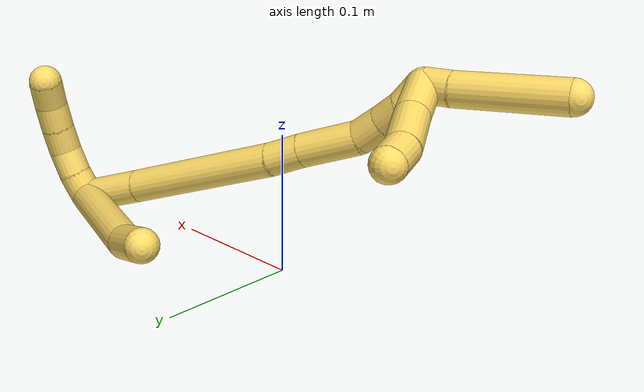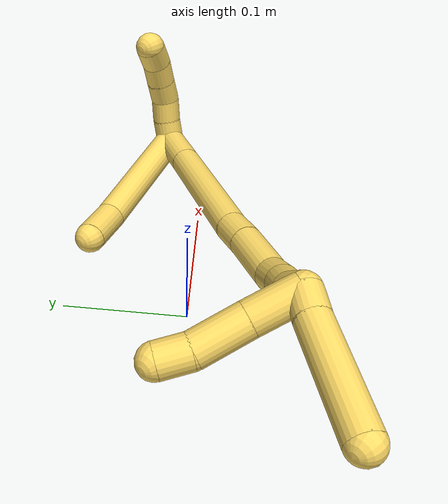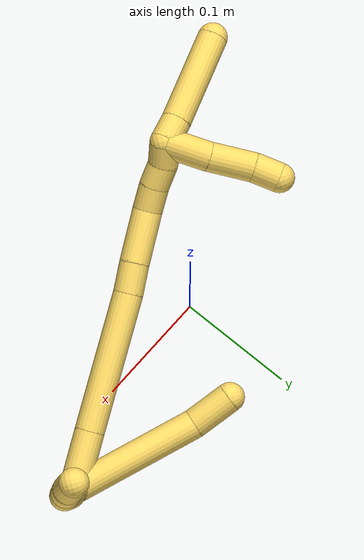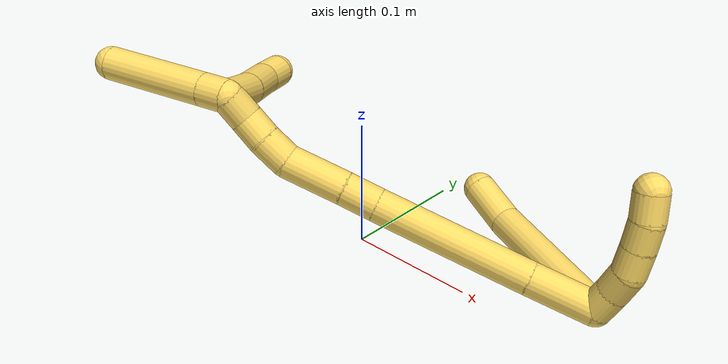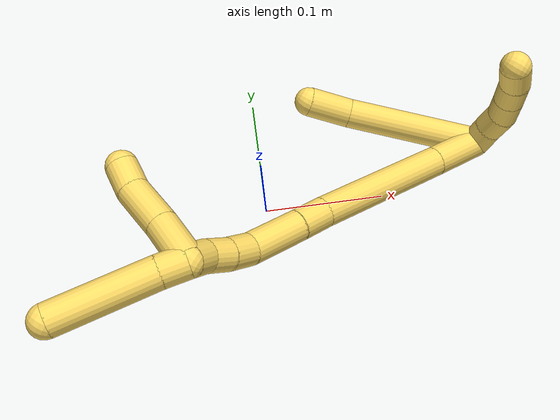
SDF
<sdf version="1.7">
 <world name="default">
  <model name="5">
   <static>0</static>
   <link name="5">
    <collision name="collision-cylinder-e_1_2_8">
     <pose>-0.011954 0.011499 0.054066 -0.209566 -0.21299 0.022484</pose>
     <geometry><cylinder><radius>0.0125</radius><length>0.113106</length></cylinder></geometry>
     <surface>
      <friction><ode><mu>1.16</mu><mu2>1.16</mu2><slip1>0</slip1><slip2>0</slip2></ode></friction>
      <contact><ode><kp>1e+06</kp><kd>1</kd><max_vel>0</max_vel><min_depth>0.001</min_depth></ode></contact>
     </surface>
    </collision>
    <visual name="visual-cylinder-e_1_2_8">
     <pose>-0.011954 0.011499 0.054066 -0.209566 -0.21299 0.022484</pose>
     <geometry><cylinder><radius>0.0125</radius><length>0.113106</length></cylinder></geometry>
     <material><ambient>1 0.858824 0.4 1</ambient></material>
    </visual>
    <collision name="collision-cylinder-e_2_8_6">
     <pose>-0.030302 0.022545 0.12543 0.026205 -0.353892 -0.004686</pose>
     <geometry><cylinder><radius>0.0125</radius><length>0.036894</length></cylinder></geometry>
     <surface>
      <friction><ode><mu>1.16</mu><mu2>1.16</mu2><slip1>0</slip1><slip2>0</slip2></ode></friction>
      <contact><ode><kp>1e+06</kp><kd>1</kd><max_vel>0</max_vel><min_depth>0.001</min_depth></ode></contact>
     </surface>
    </collision>
    <visual name="visual-cylinder-e_2_8_6">
     <pose>-0.030302 0.022545 0.12543 0.026205 -0.353892 -0.004686</pose>
     <geometry><cylinder><radius>0.0125</radius><length>0.036894</length></cylinder></geometry>
     <material><ambient>1 0.858824 0.4 1</ambient></material>
    </visual>
    <collision name="collision-cylinder-e_1_2_9">
     <pose>0.001057 -0.009912 -0.000794 1.65068 0.105871 0.114667</pose>
     <geometry><cylinder><radius>0.0125</radius><length>0.02</length></cylinder></geometry>
     <surface>
      <friction><ode><mu>1.16</mu><mu2>1.16</mu2><slip1>0</slip1><slip2>0</slip2></ode></friction>
      <contact><ode><kp>1e+06</kp><kd>1</kd><max_vel>0</max_vel><min_depth>0.001</min_depth></ode></contact>
     </surface>
    </collision>
    <visual name="visual-cylinder-e_1_2_9">
     <pose>0.001057 -0.009912 -0.000794 1.65068 0.105871 0.114667</pose>
     <geometry><cylinder><radius>0.0125</radius><length>0.02</length></cylinder></geometry>
     <material><ambient>1 0.858824 0.4 1</ambient></material>
    </visual>
    <collision name="collision-cylinder-e_2_9_10">
     <pose>0.002053 -0.029772 -0.002607 1.67299 -0.006009 -0.006656</pose>
     <geometry><cylinder><radius>0.0125</radius><length>0.02</length></cylinder></geometry>
     <surface>
      <friction><ode><mu>1.16</mu><mu2>1.16</mu2><slip1>0</slip1><slip2>0</slip2></ode></friction>
      <contact><ode><kp>1e+06</kp><kd>1</kd><max_vel>0</max_vel><min_depth>0.001</min_depth></ode></contact>
     </surface>
    </collision>
    <visual name="visual-cylinder-e_2_9_10">
     <pose>0.002053 -0.029772 -0.002607 1.67299 -0.006009 -0.006656</pose>
     <geometry><cylinder><radius>0.0125</radius><length>0.02</length></cylinder></geometry>
     <material><ambient>1 0.858824 0.4 1</ambient></material>
    </visual>
    <collision name="collision-cylinder-e_3_10_11">
     <pose>0.000912 -0.049439 -0.001537 1.359 -0.108332 -0.087544</pose>
     <geometry><cylinder><radius>0.0125</radius><length>0.02</length></cylinder></geometry>
     <surface>
      <friction><ode><mu>1.16</mu><mu2>1.16</mu2><slip1>0</slip1><slip2>0</slip2></ode></friction>
      <contact><ode><kp>1e+06</kp><kd>1</kd><max_vel>0</max_vel><min_depth>0.001</min_depth></ode></contact>
     </surface>
    </collision>
    <visual name="visual-cylinder-e_3_10_11">
     <pose>0.000912 -0.049439 -0.001537 1.359 -0.108332 -0.087544</pose>
     <geometry><cylinder><radius>0.0125</radius><length>0.02</length></cylinder></geometry>
     <material><ambient>1 0.858824 0.4 1</ambient></material>
    </visual>
    <collision name="collision-cylinder-e_4_11_12">
     <pose>-0.001636 -0.068779 0.002853 1.3361 -0.147176 -0.116213</pose>
     <geometry><cylinder><radius>0.0125</radius><length>0.02</length></cylinder></geometry>
     <surface>
      <friction><ode><mu>1.16</mu><mu2>1.16</mu2><slip1>0</slip1><slip2>0</slip2></ode></friction>
      <contact><ode><kp>1e+06</kp><kd>1</kd><max_vel>0</max_vel><min_depth>0.001</min_depth></ode></contact>
     </surface>
    </collision>
    <visual name="visual-cylinder-e_4_11_12">
     <pose>-0.001636 -0.068779 0.002853 1.3361 -0.147176 -0.116213</pose>
     <geometry><cylinder><radius>0.0125</radius><length>0.02</length></cylinder></geometry>
     <material><ambient>1 0.858824 0.4 1</ambient></material>
    </visual>
    <collision name="collision-cylinder-e_5_12_5">
     <pose>-0.005094 -0.08725 0.00936 1.12709 -0.20054 -0.126977</pose>
     <geometry><cylinder><radius>0.0125</radius><length>0.02</length></cylinder></geometry>
     <surface>
      <friction><ode><mu>1.16</mu><mu2>1.16</mu2><slip1>0</slip1><slip2>0</slip2></ode></friction>
      <contact><ode><kp>1e+06</kp><kd>1</kd><max_vel>0</max_vel><min_depth>0.001</min_depth></ode></contact>
     </surface>
    </collision>
    <visual name="visual-cylinder-e_5_12_5">
     <pose>-0.005094 -0.08725 0.00936 1.12709 -0.20054 -0.126977</pose>
     <geometry><cylinder><radius>0.0125</radius><length>0.02</length></cylinder></geometry>
     <material><ambient>1 0.858824 0.4 1</ambient></material>
    </visual>
    <collision name="collision-cylinder-e_1_2_13">
     <pose>-0.020988 0.001917 0.01269 -0.149898 -1.02199 0.08415</pose>
     <geometry><cylinder><radius>0.0125</radius><length>0.049202</length></cylinder></geometry>
     <surface>
      <friction><ode><mu>1.16</mu><mu2>1.16</mu2><slip1>0</slip1><slip2>0</slip2></ode></friction>
      <contact><ode><kp>1e+06</kp><kd>1</kd><max_vel>0</max_vel><min_depth>0.001</min_depth></ode></contact>
     </surface>
    </collision>
    <visual name="visual-cylinder-e_1_2_13">
     <pose>-0.020988 0.001917 0.01269 -0.149898 -1.02199 0.08415</pose>
     <geometry><cylinder><radius>0.0125</radius><length>0.049202</length></cylinder></geometry>
     <material><ambient>1 0.858824 0.4 1</ambient></material>
    </visual>
    <collision name="collision-cylinder-e_2_13_14">
     <pose>-0.091862 0.007876 0.056128 -0.130736 -1.01458 0.072735</pose>
     <geometry><cylinder><radius>0.0125</radius><length>0.11748</length></cylinder></geometry>
     <surface>
      <friction><ode><mu>1.16</mu><mu2>1.16</mu2><slip1>0</slip1><slip2>0</slip2></ode></friction>
      <contact><ode><kp>1e+06</kp><kd>1</kd><max_vel>0</max_vel><min_depth>0.001</min_depth></ode></contact>
     </surface>
    </collision>
    <visual name="visual-cylinder-e_2_13_14">
     <pose>-0.091862 0.007876 0.056128 -0.130736 -1.01458 0.072735</pose>
     <geometry><cylinder><radius>0.0125</radius><length>0.11748</length></cylinder></geometry>
     <material><ambient>1 0.858824 0.4 1</ambient></material>
    </visual>
    <collision name="collision-cylinder-e_3_14_15">
     <pose>-0.153101 0.011963 0.092909 -0.007256 -1.08244 0.004361</pose>
     <geometry><cylinder><radius>0.0125</radius><length>0.025714</length></cylinder></geometry>
     <surface>
      <friction><ode><mu>1.16</mu><mu2>1.16</mu2><slip1>0</slip1><slip2>0</slip2></ode></friction>
      <contact><ode><kp>1e+06</kp><kd>1</kd><max_vel>0</max_vel><min_depth>0.001</min_depth></ode></contact>
     </surface>
    </collision>
    <visual name="visual-cylinder-e_3_14_15">
     <pose>-0.153101 0.011963 0.092909 -0.007256 -1.08244 0.004361</pose>
     <geometry><cylinder><radius>0.0125</radius><length>0.025714</length></cylinder></geometry>
     <material><ambient>1 0.858824 0.4 1</ambient></material>
    </visual>
    <collision name="collision-cylinder-e_4_15_16">
     <pose>-0.184005 0.013195 0.110199 -0.105196 -1.0459 0.060681</pose>
     <geometry><cylinder><radius>0.0125</radius><length>0.045181</length></cylinder></geometry>
     <surface>
      <friction><ode><mu>1.16</mu><mu2>1.16</mu2><slip1>0</slip1><slip2>0</slip2></ode></friction>
      <contact><ode><kp>1e+06</kp><kd>1</kd><max_vel>0</max_vel><min_depth>0.001</min_depth></ode></contact>
     </surface>
    </collision>
    <visual name="visual-cylinder-e_4_15_16">
     <pose>-0.184005 0.013195 0.110199 -0.105196 -1.0459 0.060681</pose>
     <geometry><cylinder><radius>0.0125</radius><length>0.045181</length></cylinder></geometry>
     <material><ambient>1 0.858824 0.4 1</ambient></material>
    </visual>
    <collision name="collision-cylinder-e_5_16_17">
     <pose>-0.212326 0.011247 0.127262 0.495393 -0.925888 -0.251117</pose>
     <geometry><cylinder><radius>0.0125</radius><length>0.021953</length></cylinder></geometry>
     <surface>
      <friction><ode><mu>1.16</mu><mu2>1.16</mu2><slip1>0</slip1><slip2>0</slip2></ode></friction>
      <contact><ode><kp>1e+06</kp><kd>1</kd><max_vel>0</max_vel><min_depth>0.001</min_depth></ode></contact>
     </surface>
    </collision>
    <visual name="visual-cylinder-e_5_16_17">
     <pose>-0.212326 0.011247 0.127262 0.495393 -0.925888 -0.251117</pose>
     <geometry><cylinder><radius>0.0125</radius><length>0.021953</length></cylinder></geometry>
     <material><ambient>1 0.858824 0.4 1</ambient></material>
    </visual>
    <collision name="collision-cylinder-e_6_17_18">
     <pose>-0.228377 0.00486 0.139286 0.481701 -0.8037 -0.20801</pose>
     <geometry><cylinder><radius>0.0125</radius><length>0.020221</length></cylinder></geometry>
     <surface>
      <friction><ode><mu>1.16</mu><mu2>1.16</mu2><slip1>0</slip1><slip2>0</slip2></ode></friction>
      <contact><ode><kp>1e+06</kp><kd>1</kd><max_vel>0</max_vel><min_depth>0.001</min_depth></ode></contact>
     </surface>
    </collision>
    <visual name="visual-cylinder-e_6_17_18">
     <pose>-0.228377 0.00486 0.139286 0.481701 -0.8037 -0.20801</pose>
     <geometry><cylinder><radius>0.0125</radius><length>0.020221</length></cylinder></geometry>
     <material><ambient>1 0.858824 0.4 1</ambient></material>
    </visual>
    <collision name="collision-cylinder-e_7_18_1">
     <pose>-0.243681 -0.00347 0.149011 0.966658 -0.915271 -0.50591</pose>
     <geometry><cylinder><radius>0.0125</radius><length>0.020249</length></cylinder></geometry>
     <surface>
      <friction><ode><mu>1.16</mu><mu2>1.16</mu2><slip1>0</slip1><slip2>0</slip2></ode></friction>
      <contact><ode><kp>1e+06</kp><kd>1</kd><max_vel>0</max_vel><min_depth>0.001</min_depth></ode></contact>
     </surface>
    </collision>
    <visual name="visual-cylinder-e_7_18_1">
     <pose>-0.243681 -0.00347 0.149011 0.966658 -0.915271 -0.50591</pose>
     <geometry><cylinder><radius>0.0125</radius><length>0.020249</length></cylinder></geometry>
     <material><ambient>1 0.858824 0.4 1</ambient></material>
    </visual>
    <collision name="collision-cylinder-e_1_1_19">
     <pose>-0.24129 -0.00329 0.167547 -0.33662 0.579307 -0.101196</pose>
     <geometry><cylinder><radius>0.0125</radius><length>0.038059</length></cylinder></geometry>
     <surface>
      <friction><ode><mu>1.16</mu><mu2>1.16</mu2><slip1>0</slip1><slip2>0</slip2></ode></friction>
      <contact><ode><kp>1e+06</kp><kd>1</kd><max_vel>0</max_vel><min_depth>0.001</min_depth></ode></contact>
     </surface>
    </collision>
    <visual name="visual-cylinder-e_1_1_19">
     <pose>-0.24129 -0.00329 0.167547 -0.33662 0.579307 -0.101196</pose>
     <geometry><cylinder><radius>0.0125</radius><length>0.038059</length></cylinder></geometry>
     <material><ambient>1 0.858824 0.4 1</ambient></material>
    </visual>
    <collision name="collision-cylinder-e_2_19_20">
     <pose>-0.221523 0.006691 0.199016 -0.27965 0.500262 -0.071884</pose>
     <geometry><cylinder><radius>0.0125</radius><length>0.038981</length></cylinder></geometry>
     <surface>
      <friction><ode><mu>1.16</mu><mu2>1.16</mu2><slip1>0</slip1><slip2>0</slip2></ode></friction>
      <contact><ode><kp>1e+06</kp><kd>1</kd><max_vel>0</max_vel><min_depth>0.001</min_depth></ode></contact>
     </surface>
    </collision>
    <visual name="visual-cylinder-e_2_19_20">
     <pose>-0.221523 0.006691 0.199016 -0.27965 0.500262 -0.071884</pose>
     <geometry><cylinder><radius>0.0125</radius><length>0.038981</length></cylinder></geometry>
     <material><ambient>1 0.858824 0.4 1</ambient></material>
    </visual>
    <collision name="collision-cylinder-e_3_20_4">
     <pose>-0.205072 0.012057 0.224449 -0.071624 0.667151 -0.024829</pose>
     <geometry><cylinder><radius>0.0125</radius><length>0.02296</length></cylinder></geometry>
     <surface>
      <friction><ode><mu>1.16</mu><mu2>1.16</mu2><slip1>0</slip1><slip2>0</slip2></ode></friction>
      <contact><ode><kp>1e+06</kp><kd>1</kd><max_vel>0</max_vel><min_depth>0.001</min_depth></ode></contact>
     </surface>
    </collision>
    <visual name="visual-cylinder-e_3_20_4">
     <pose>-0.205072 0.012057 0.224449 -0.071624 0.667151 -0.024829</pose>
     <geometry><cylinder><radius>0.0125</radius><length>0.02296</length></cylinder></geometry>
     <material><ambient>1 0.858824 0.4 1</ambient></material>
    </visual>
    <collision name="collision-cylinder-e_1_1_21">
     <pose>-0.258831 -0.004978 0.159105 -0.496761 -0.760034 0.201917</pose>
     <geometry><cylinder><radius>0.0125</radius><length>0.020679</length></cylinder></geometry>
     <surface>
      <friction><ode><mu>1.16</mu><mu2>1.16</mu2><slip1>0</slip1><slip2>0</slip2></ode></friction>
      <contact><ode><kp>1e+06</kp><kd>1</kd><max_vel>0</max_vel><min_depth>0.001</min_depth></ode></contact>
     </surface>
    </collision>
    <visual name="visual-cylinder-e_1_1_21">
     <pose>-0.258831 -0.004978 0.159105 -0.496761 -0.760034 0.201917</pose>
     <geometry><cylinder><radius>0.0125</radius><length>0.020679</length></cylinder></geometry>
     <material><ambient>1 0.858824 0.4 1</ambient></material>
    </visual>
    <collision name="collision-cylinder-e_2_21_3">
     <pose>-0.295576 0.010953 0.188989 -0.48777 -0.843385 0.222339</pose>
     <geometry><cylinder><radius>0.0125</radius><length>0.079321</length></cylinder></geometry>
     <surface>
      <friction><ode><mu>1.16</mu><mu2>1.16</mu2><slip1>0</slip1><slip2>0</slip2></ode></friction>
      <contact><ode><kp>1e+06</kp><kd>1</kd><max_vel>0</max_vel><min_depth>0.001</min_depth></ode></contact>
     </surface>
    </collision>
    <visual name="visual-cylinder-e_2_21_3">
     <pose>-0.295576 0.010953 0.188989 -0.48777 -0.843385 0.222339</pose>
     <geometry><cylinder><radius>0.0125</radius><length>0.079321</length></cylinder></geometry>
     <material><ambient>1 0.858824 0.4 1</ambient></material>
    </visual>
    <collision name="collision-sphere-3">
     <pose>-0.325199 0.023312 0.212286 0 -0 0</pose>
     <geometry><sphere><radius>0.0125</radius></sphere></geometry>
     <surface>
      <friction><ode><mu>1.16</mu><mu2>1.16</mu2><slip1>0</slip1><slip2>0</slip2></ode></friction>
      <contact><ode><kp>1e+06</kp><kd>1</kd><max_vel>0</max_vel><min_depth>0.001</min_depth></ode></contact>
     </surface>
    </collision>
    <visual name="visual-sphere-3">
     <pose>-0.325199 0.023312 0.212286 0 -0 0</pose>
     <geometry><sphere><radius>0.0125</radius></sphere></geometry>
     <material><ambient>1 0.858824 0.4 1</ambient></material>
    </visual>
    <collision name="collision-sphere-21">
     <pose>-0.265954 -0.001407 0.165693 0 -0 0</pose>
     <geometry><sphere><radius>0.0125</radius></sphere></geometry>
     <surface>
      <friction><ode><mu>1.16</mu><mu2>1.16</mu2><slip1>0</slip1><slip2>0</slip2></ode></friction>
      <contact><ode><kp>1e+06</kp><kd>1</kd><max_vel>0</max_vel><min_depth>0.001</min_depth></ode></contact>
     </surface>
    </collision>
    <visual name="visual-sphere-21">
     <pose>-0.265954 -0.001407 0.165693 0 -0 0</pose>
     <geometry><sphere><radius>0.0125</radius></sphere></geometry>
     <material><ambient>1 0.858824 0.4 1</ambient></material>
    </visual>
    <collision name="collision-sphere-4">
     <pose>-0.197968 0.012702 0.233445 0 -0 0</pose>
     <geometry><sphere><radius>0.0125</radius></sphere></geometry>
     <surface>
      <friction><ode><mu>1.16</mu><mu2>1.16</mu2><slip1>0</slip1><slip2>0</slip2></ode></friction>
      <contact><ode><kp>1e+06</kp><kd>1</kd><max_vel>0</max_vel><min_depth>0.001</min_depth></ode></contact>
     </surface>
    </collision>
    <visual name="visual-sphere-4">
     <pose>-0.197968 0.012702 0.233445 0 -0 0</pose>
     <geometry><sphere><radius>0.0125</radius></sphere></geometry>
     <material><ambient>1 0.858824 0.4 1</ambient></material>
    </visual>
    <collision name="collision-sphere-20">
     <pose>-0.212175 0.011411 0.215454 0 -0 0</pose>
     <geometry><sphere><radius>0.0125</radius></sphere></geometry>
     <surface>
      <friction><ode><mu>1.16</mu><mu2>1.16</mu2><slip1>0</slip1><slip2>0</slip2></ode></friction>
      <contact><ode><kp>1e+06</kp><kd>1</kd><max_vel>0</max_vel><min_depth>0.001</min_depth></ode></contact>
     </surface>
    </collision>
    <visual name="visual-sphere-20">
     <pose>-0.212175 0.011411 0.215454 0 -0 0</pose>
     <geometry><sphere><radius>0.0125</radius></sphere></geometry>
     <material><ambient>1 0.858824 0.4 1</ambient></material>
    </visual>
    <collision name="collision-sphere-11">
     <pose>-0.000169 -0.059158 0.000552 0 -0 0</pose>
     <geometry><sphere><radius>0.0125</radius></sphere></geometry>
     <surface>
      <friction><ode><mu>1.16</mu><mu2>1.16</mu2><slip1>0</slip1><slip2>0</slip2></ode></friction>
      <contact><ode><kp>1e+06</kp><kd>1</kd><max_vel>0</max_vel><min_depth>0.001</min_depth></ode></contact>
     </surface>
    </collision>
    <visual name="visual-sphere-11">
     <pose>-0.000169 -0.059158 0.000552 0 -0 0</pose>
     <geometry><sphere><radius>0.0125</radius></sphere></geometry>
     <material><ambient>1 0.858824 0.4 1</ambient></material>
    </visual>
    <collision name="collision-sphere-10">
     <pose>0.001993 -0.03972 -0.003627 0 -0 0</pose>
     <geometry><sphere><radius>0.0125</radius></sphere></geometry>
     <surface>
      <friction><ode><mu>1.16</mu><mu2>1.16</mu2><slip1>0</slip1><slip2>0</slip2></ode></friction>
      <contact><ode><kp>1e+06</kp><kd>1</kd><max_vel>0</max_vel><min_depth>0.001</min_depth></ode></contact>
     </surface>
    </collision>
    <visual name="visual-sphere-10">
     <pose>0.001993 -0.03972 -0.003627 0 -0 0</pose>
     <geometry><sphere><radius>0.0125</radius></sphere></geometry>
     <material><ambient>1 0.858824 0.4 1</ambient></material>
    </visual>
    <collision name="collision-sphere-6">
     <pose>-0.036694 0.022092 0.142727 0 -0 0</pose>
     <geometry><sphere><radius>0.0125</radius></sphere></geometry>
     <surface>
      <friction><ode><mu>1.16</mu><mu2>1.16</mu2><slip1>0</slip1><slip2>0</slip2></ode></friction>
      <contact><ode><kp>1e+06</kp><kd>1</kd><max_vel>0</max_vel><min_depth>0.001</min_depth></ode></contact>
     </surface>
    </collision>
    <visual name="visual-sphere-6">
     <pose>-0.036694 0.022092 0.142727 0 -0 0</pose>
     <geometry><sphere><radius>0.0125</radius></sphere></geometry>
     <material><ambient>1 0.858824 0.4 1</ambient></material>
    </visual>
    <collision name="collision-sphere-9">
     <pose>0.002113 -0.019825 -0.001587 0 -0 0</pose>
     <geometry><sphere><radius>0.0125</radius></sphere></geometry>
     <surface>
      <friction><ode><mu>1.16</mu><mu2>1.16</mu2><slip1>0</slip1><slip2>0</slip2></ode></friction>
      <contact><ode><kp>1e+06</kp><kd>1</kd><max_vel>0</max_vel><min_depth>0.001</min_depth></ode></contact>
     </surface>
    </collision>
    <visual name="visual-sphere-9">
     <pose>0.002113 -0.019825 -0.001587 0 -0 0</pose>
     <geometry><sphere><radius>0.0125</radius></sphere></geometry>
     <material><ambient>1 0.858824 0.4 1</ambient></material>
    </visual>
    <collision name="collision-sphere-2">
     <geometry><sphere><radius>0.0125</radius></sphere></geometry>
     <surface>
      <friction><ode><mu>1.16</mu><mu2>1.16</mu2><slip1>0</slip1><slip2>0</slip2></ode></friction>
      <contact><ode><kp>1e+06</kp><kd>1</kd><max_vel>0</max_vel><min_depth>0.001</min_depth></ode></contact>
     </surface>
    </collision>
    <visual name="visual-sphere-2">
     <geometry><sphere><radius>0.0125</radius></sphere></geometry>
     <material><ambient>1 0.858824 0.4 1</ambient></material>
    </visual>
    <collision name="collision-sphere-19">
     <pose>-0.230872 0.00197 0.182578 0 -0 0</pose>
     <geometry><sphere><radius>0.0125</radius></sphere></geometry>
     <surface>
      <friction><ode><mu>1.16</mu><mu2>1.16</mu2><slip1>0</slip1><slip2>0</slip2></ode></friction>
      <contact><ode><kp>1e+06</kp><kd>1</kd><max_vel>0</max_vel><min_depth>0.001</min_depth></ode></contact>
     </surface>
    </collision>
    <visual name="visual-sphere-19">
     <pose>-0.230872 0.00197 0.182578 0 -0 0</pose>
     <geometry><sphere><radius>0.0125</radius></sphere></geometry>
     <material><ambient>1 0.858824 0.4 1</ambient></material>
    </visual>
    <collision name="collision-sphere-8">
     <pose>-0.023909 0.022998 0.108132 0 -0 0</pose>
     <geometry><sphere><radius>0.0125</radius></sphere></geometry>
     <surface>
      <friction><ode><mu>1.16</mu><mu2>1.16</mu2><slip1>0</slip1><slip2>0</slip2></ode></friction>
      <contact><ode><kp>1e+06</kp><kd>1</kd><max_vel>0</max_vel><min_depth>0.001</min_depth></ode></contact>
     </surface>
    </collision>
    <visual name="visual-sphere-8">
     <pose>-0.023909 0.022998 0.108132 0 -0 0</pose>
     <geometry><sphere><radius>0.0125</radius></sphere></geometry>
     <material><ambient>1 0.858824 0.4 1</ambient></material>
    </visual>
    <collision name="collision-sphere-12">
     <pose>-0.003102 -0.0784 0.005153 0 -0 0</pose>
     <geometry><sphere><radius>0.0125</radius></sphere></geometry>
     <surface>
      <friction><ode><mu>1.16</mu><mu2>1.16</mu2><slip1>0</slip1><slip2>0</slip2></ode></friction>
      <contact><ode><kp>1e+06</kp><kd>1</kd><max_vel>0</max_vel><min_depth>0.001</min_depth></ode></contact>
     </surface>
    </collision>
    <visual name="visual-sphere-12">
     <pose>-0.003102 -0.0784 0.005153 0 -0 0</pose>
     <geometry><sphere><radius>0.0125</radius></sphere></geometry>
     <material><ambient>1 0.858824 0.4 1</ambient></material>
    </visual>
    <collision name="collision-sphere-5">
     <pose>-0.007086 -0.096101 0.013567 0 -0 0</pose>
     <geometry><sphere><radius>0.0125</radius></sphere></geometry>
     <surface>
      <friction><ode><mu>1.16</mu><mu2>1.16</mu2><slip1>0</slip1><slip2>0</slip2></ode></friction>
      <contact><ode><kp>1e+06</kp><kd>1</kd><max_vel>0</max_vel><min_depth>0.001</min_depth></ode></contact>
     </surface>
    </collision>
    <visual name="visual-sphere-5">
     <pose>-0.007086 -0.096101 0.013567 0 -0 0</pose>
     <geometry><sphere><radius>0.0125</radius></sphere></geometry>
     <material><ambient>1 0.858824 0.4 1</ambient></material>
    </visual>
    <collision name="collision-sphere-13">
     <pose>-0.041977 0.003833 0.02538 0 -0 0</pose>
     <geometry><sphere><radius>0.0125</radius></sphere></geometry>
     <surface>
      <friction><ode><mu>1.16</mu><mu2>1.16</mu2><slip1>0</slip1><slip2>0</slip2></ode></friction>
      <contact><ode><kp>1e+06</kp><kd>1</kd><max_vel>0</max_vel><min_depth>0.001</min_depth></ode></contact>
     </surface>
    </collision>
    <visual name="visual-sphere-13">
     <pose>-0.041977 0.003833 0.02538 0 -0 0</pose>
     <geometry><sphere><radius>0.0125</radius></sphere></geometry>
     <material><ambient>1 0.858824 0.4 1</ambient></material>
    </visual>
    <collision name="collision-sphere-14">
     <pose>-0.141747 0.011919 0.086877 0 -0 0</pose>
     <geometry><sphere><radius>0.0125</radius></sphere></geometry>
     <surface>
      <friction><ode><mu>1.16</mu><mu2>1.16</mu2><slip1>0</slip1><slip2>0</slip2></ode></friction>
      <contact><ode><kp>1e+06</kp><kd>1</kd><max_vel>0</max_vel><min_depth>0.001</min_depth></ode></contact>
     </surface>
    </collision>
    <visual name="visual-sphere-14">
     <pose>-0.141747 0.011919 0.086877 0 -0 0</pose>
     <geometry><sphere><radius>0.0125</radius></sphere></geometry>
     <material><ambient>1 0.858824 0.4 1</ambient></material>
    </visual>
    <collision name="collision-sphere-15">
     <pose>-0.164455 0.012007 0.098941 0 -0 0</pose>
     <geometry><sphere><radius>0.0125</radius></sphere></geometry>
     <surface>
      <friction><ode><mu>1.16</mu><mu2>1.16</mu2><slip1>0</slip1><slip2>0</slip2></ode></friction>
      <contact><ode><kp>1e+06</kp><kd>1</kd><max_vel>0</max_vel><min_depth>0.001</min_depth></ode></contact>
     </surface>
    </collision>
    <visual name="visual-sphere-15">
     <pose>-0.164455 0.012007 0.098941 0 -0 0</pose>
     <geometry><sphere><radius>0.0125</radius></sphere></geometry>
     <material><ambient>1 0.858824 0.4 1</ambient></material>
    </visual>
    <collision name="collision-sphere-16">
     <pose>-0.203554 0.014384 0.121457 0 -0 0</pose>
     <geometry><sphere><radius>0.0125</radius></sphere></geometry>
     <surface>
      <friction><ode><mu>1.16</mu><mu2>1.16</mu2><slip1>0</slip1><slip2>0</slip2></ode></friction>
      <contact><ode><kp>1e+06</kp><kd>1</kd><max_vel>0</max_vel><min_depth>0.001</min_depth></ode></contact>
     </surface>
    </collision>
    <visual name="visual-sphere-16">
     <pose>-0.203554 0.014384 0.121457 0 -0 0</pose>
     <geometry><sphere><radius>0.0125</radius></sphere></geometry>
     <material><ambient>1 0.858824 0.4 1</ambient></material>
    </visual>
    <collision name="collision-sphere-17">
     <pose>-0.221098 0.008111 0.133067 0 -0 0</pose>
     <geometry><sphere><radius>0.0125</radius></sphere></geometry>
     <surface>
      <friction><ode><mu>1.16</mu><mu2>1.16</mu2><slip1>0</slip1><slip2>0</slip2></ode></friction>
      <contact><ode><kp>1e+06</kp><kd>1</kd><max_vel>0</max_vel><min_depth>0.001</min_depth></ode></contact>
     </surface>
    </collision>
    <visual name="visual-sphere-17">
     <pose>-0.221098 0.008111 0.133067 0 -0 0</pose>
     <geometry><sphere><radius>0.0125</radius></sphere></geometry>
     <material><ambient>1 0.858824 0.4 1</ambient></material>
    </visual>
    <collision name="collision-sphere-18">
     <pose>-0.235655 0.001609 0.145505 0 -0 0</pose>
     <geometry><sphere><radius>0.0125</radius></sphere></geometry>
     <surface>
      <friction><ode><mu>1.16</mu><mu2>1.16</mu2><slip1>0</slip1><slip2>0</slip2></ode></friction>
      <contact><ode><kp>1e+06</kp><kd>1</kd><max_vel>0</max_vel><min_depth>0.001</min_depth></ode></contact>
     </surface>
    </collision>
    <visual name="visual-sphere-18">
     <pose>-0.235655 0.001609 0.145505 0 -0 0</pose>
     <geometry><sphere><radius>0.0125</radius></sphere></geometry>
     <material><ambient>1 0.858824 0.4 1</ambient></material>
    </visual>
    <collision name="collision-sphere-1">
     <pose>-0.251707 -0.00855 0.152516 0 -0 0</pose>
     <geometry><sphere><radius>0.0125</radius></sphere></geometry>
     <surface>
      <friction><ode><mu>1.16</mu><mu2>1.16</mu2><slip1>0</slip1><slip2>0</slip2></ode></friction>
      <contact><ode><kp>1e+06</kp><kd>1</kd><max_vel>0</max_vel><min_depth>0.001</min_depth></ode></contact>
     </surface>
    </collision>
    <visual name="visual-sphere-1">
     <pose>-0.251707 -0.00855 0.152516 0 -0 0</pose>
     <geometry><sphere><radius>0.0125</radius></sphere></geometry>
     <material><ambient>1 0.858824 0.4 1</ambient></material>
    </visual>
    <inertial>
     <pose>-0.12285 0.000808 0.095561 0 -0 0</pose>
     <mass>0.75</mass>
     <inertia>
      <ixx>0.000254</ixx>
      <ixy>0</ixy>
      <ixz>0</ixz>
      <iyy>0.000365</iyy>
      <iyz>0</iyz>
      <izz>0.000188</izz>
     </inertia>
    </inertial>
   </link>
   <pose>0.187989 0.034517 0.011986 -1.37639 0.339426 1.00639</pose>
  </model>
 </world>
</sdf>
